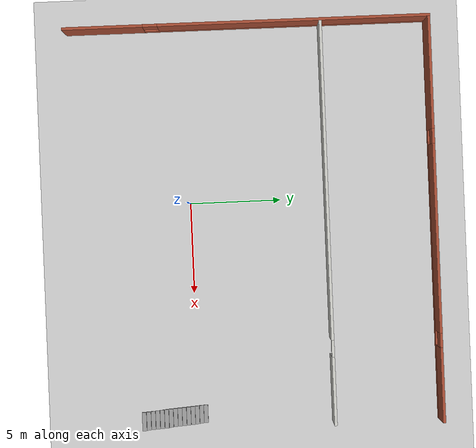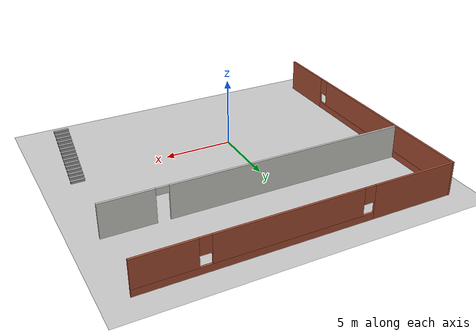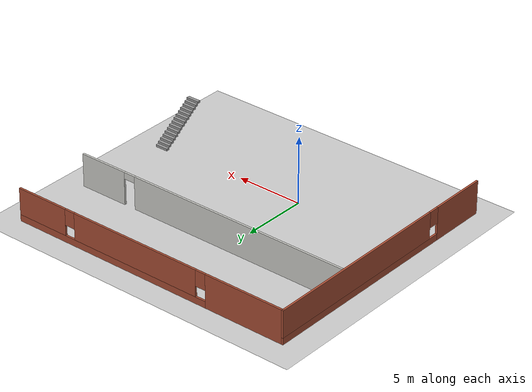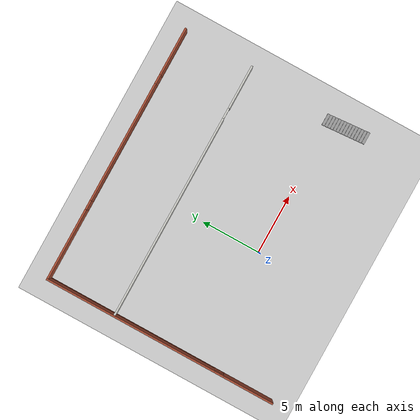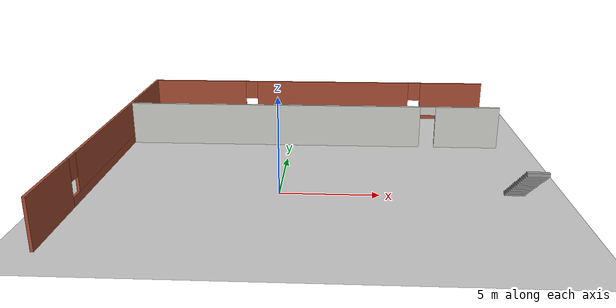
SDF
<sdf version="1.6">
 <world name="default">
  <model name="ground_plane">
   <static>1</static>
   <link name="link">
    <collision name="collision">
     <geometry><plane><normal>0 0 1</normal><size>100 100</size></plane></geometry>
     <surface>
      <contact><collide_bitmask>65535</collide_bitmask></contact>
      <friction><ode><mu>100</mu><mu2>50</mu2></ode></friction>
     </surface>
    </collision>
    <visual name="visual">
     <cast_shadows>0</cast_shadows>
     <geometry><plane><normal>0 0 1</normal><size>100 100</size></plane></geometry>
     <material>
      <script><uri>file://media/materials/scripts/gazebo.material</uri><name>Gazebo/Grey</name></script>
     </material>
    </visual>
   </link>
  </model>
  <model name="Building">
   <link name="Stairs_0">
    <visual name="Stairs_0_Visual_0">
     <pose>10.3988 -0.214929 0.083333 0 -0 0</pose>
     <geometry><box><size>1 0.233333 0.166667</size></box></geometry>
     <material>
      <script><uri>file://media/materials/scripts/gazebo.material</uri><name>Gazebo/Grey</name></script>
      <ambient>1 1 1 1</ambient>
      <shader type="pixel"/>
      <diffuse>0.7 0.7 0.7 1</diffuse>
      <specular>0.01 0.01 0.01 1</specular>
      <emissive>0 0 0 1</emissive>
     </material>
     <meta><layer>0</layer></meta>
    </visual>
    <visual name="Stairs_0_Visual_1">
     <pose>10.3988 -0.448263 0.25 0 -0 0</pose>
     <geometry><box><size>1 0.233333 0.166667</size></box></geometry>
     <material>
      <script><uri>file://media/materials/scripts/gazebo.material</uri><name>Gazebo/Grey</name></script>
      <ambient>1 1 1 1</ambient>
      <shader type="pixel"/>
      <diffuse>0.7 0.7 0.7 1</diffuse>
      <specular>0.01 0.01 0.01 1</specular>
      <emissive>0 0 0 1</emissive>
     </material>
     <meta><layer>0</layer></meta>
    </visual>
    <visual name="Stairs_0_Visual_2">
     <pose>10.3988 -0.681596 0.416667 0 -0 0</pose>
     <geometry><box><size>1 0.233333 0.166667</size></box></geometry>
     <material>
      <script><uri>file://media/materials/scripts/gazebo.material</uri><name>Gazebo/Grey</name></script>
      <ambient>1 1 1 1</ambient>
      <shader type="pixel"/>
      <diffuse>0.7 0.7 0.7 1</diffuse>
      <specular>0.01 0.01 0.01 1</specular>
      <emissive>0 0 0 1</emissive>
     </material>
     <meta><layer>0</layer></meta>
    </visual>
    <visual name="Stairs_0_Visual_3">
     <pose>10.3988 -0.914929 0.583333 0 -0 0</pose>
     <geometry><box><size>1 0.233333 0.166667</size></box></geometry>
     <material>
      <script><uri>file://media/materials/scripts/gazebo.material</uri><name>Gazebo/Grey</name></script>
      <ambient>1 1 1 1</ambient>
      <shader type="pixel"/>
      <diffuse>0.7 0.7 0.7 1</diffuse>
      <specular>0.01 0.01 0.01 1</specular>
      <emissive>0 0 0 1</emissive>
     </material>
     <meta><layer>0</layer></meta>
    </visual>
    <visual name="Stairs_0_Visual_4">
     <pose>10.3988 -1.14826 0.75 0 -0 0</pose>
     <geometry><box><size>1 0.233333 0.166667</size></box></geometry>
     <material>
      <script><uri>file://media/materials/scripts/gazebo.material</uri><name>Gazebo/Grey</name></script>
      <ambient>1 1 1 1</ambient>
      <shader type="pixel"/>
      <diffuse>0.7 0.7 0.7 1</diffuse>
      <specular>0.01 0.01 0.01 1</specular>
      <emissive>0 0 0 1</emissive>
     </material>
     <meta><layer>0</layer></meta>
    </visual>
    <visual name="Stairs_0_Visual_5">
     <pose>10.3988 -1.3816 0.916667 0 -0 0</pose>
     <geometry><box><size>1 0.233333 0.166667</size></box></geometry>
     <material>
      <script><uri>file://media/materials/scripts/gazebo.material</uri><name>Gazebo/Grey</name></script>
      <ambient>1 1 1 1</ambient>
      <shader type="pixel"/>
      <diffuse>0.7 0.7 0.7 1</diffuse>
      <specular>0.01 0.01 0.01 1</specular>
      <emissive>0 0 0 1</emissive>
     </material>
     <meta><layer>0</layer></meta>
    </visual>
    <visual name="Stairs_0_Visual_6">
     <pose>10.3988 -1.61493 1.08333 0 -0 0</pose>
     <geometry><box><size>1 0.233333 0.166667</size></box></geometry>
     <material>
      <script><uri>file://media/materials/scripts/gazebo.material</uri><name>Gazebo/Grey</name></script>
      <ambient>1 1 1 1</ambient>
      <shader type="pixel"/>
      <diffuse>0.7 0.7 0.7 1</diffuse>
      <specular>0.01 0.01 0.01 1</specular>
      <emissive>0 0 0 1</emissive>
     </material>
     <meta><layer>0</layer></meta>
    </visual>
    <visual name="Stairs_0_Visual_7">
     <pose>10.3988 -1.84826 1.25 0 -0 0</pose>
     <geometry><box><size>1 0.233333 0.166667</size></box></geometry>
     <material>
      <script><uri>file://media/materials/scripts/gazebo.material</uri><name>Gazebo/Grey</name></script>
      <ambient>1 1 1 1</ambient>
      <shader type="pixel"/>
      <diffuse>0.7 0.7 0.7 1</diffuse>
      <specular>0.01 0.01 0.01 1</specular>
      <emissive>0 0 0 1</emissive>
     </material>
     <meta><layer>0</layer></meta>
    </visual>
    <visual name="Stairs_0_Visual_8">
     <pose>10.3988 -2.0816 1.41667 0 -0 0</pose>
     <geometry><box><size>1 0.233333 0.166667</size></box></geometry>
     <material>
      <script><uri>file://media/materials/scripts/gazebo.material</uri><name>Gazebo/Grey</name></script>
      <ambient>1 1 1 1</ambient>
      <shader type="pixel"/>
      <diffuse>0.7 0.7 0.7 1</diffuse>
      <specular>0.01 0.01 0.01 1</specular>
      <emissive>0 0 0 1</emissive>
     </material>
     <meta><layer>0</layer></meta>
    </visual>
    <visual name="Stairs_0_Visual_9">
     <pose>10.3988 -2.31493 1.58333 0 -0 0</pose>
     <geometry><box><size>1 0.233333 0.166667</size></box></geometry>
     <material>
      <script><uri>file://media/materials/scripts/gazebo.material</uri><name>Gazebo/Grey</name></script>
      <ambient>1 1 1 1</ambient>
      <shader type="pixel"/>
      <diffuse>0.7 0.7 0.7 1</diffuse>
      <specular>0.01 0.01 0.01 1</specular>
      <emissive>0 0 0 1</emissive>
     </material>
     <meta><layer>0</layer></meta>
    </visual>
    <visual name="Stairs_0_Visual_10">
     <pose>10.3988 -2.54826 1.75 0 -0 0</pose>
     <geometry><box><size>1 0.233333 0.166667</size></box></geometry>
     <material>
      <script><uri>file://media/materials/scripts/gazebo.material</uri><name>Gazebo/Grey</name></script>
      <ambient>1 1 1 1</ambient>
      <shader type="pixel"/>
      <diffuse>0.7 0.7 0.7 1</diffuse>
      <specular>0.01 0.01 0.01 1</specular>
      <emissive>0 0 0 1</emissive>
     </material>
     <meta><layer>0</layer></meta>
    </visual>
    <visual name="Stairs_0_Visual_11">
     <pose>10.3988 -2.7816 1.91667 0 -0 0</pose>
     <geometry><box><size>1 0.233333 0.166667</size></box></geometry>
     <material>
      <script><uri>file://media/materials/scripts/gazebo.material</uri><name>Gazebo/Grey</name></script>
      <ambient>1 1 1 1</ambient>
      <shader type="pixel"/>
      <diffuse>0.7 0.7 0.7 1</diffuse>
      <specular>0.01 0.01 0.01 1</specular>
      <emissive>0 0 0 1</emissive>
     </material>
     <meta><layer>0</layer></meta>
    </visual>
    <visual name="Stairs_0_Visual_12">
     <pose>10.3988 -3.01493 2.08333 0 -0 0</pose>
     <geometry><box><size>1 0.233333 0.166667</size></box></geometry>
     <material>
      <script><uri>file://media/materials/scripts/gazebo.material</uri><name>Gazebo/Grey</name></script>
      <ambient>1 1 1 1</ambient>
      <shader type="pixel"/>
      <diffuse>0.7 0.7 0.7 1</diffuse>
      <specular>0.01 0.01 0.01 1</specular>
      <emissive>0 0 0 1</emissive>
     </material>
     <meta><layer>0</layer></meta>
    </visual>
    <visual name="Stairs_0_Visual_13">
     <pose>10.3988 -3.24826 2.25 0 -0 0</pose>
     <geometry><box><size>1 0.233333 0.166667</size></box></geometry>
     <material>
      <script><uri>file://media/materials/scripts/gazebo.material</uri><name>Gazebo/Grey</name></script>
      <ambient>1 1 1 1</ambient>
      <shader type="pixel"/>
      <diffuse>0.7 0.7 0.7 1</diffuse>
      <specular>0.01 0.01 0.01 1</specular>
      <emissive>0 0 0 1</emissive>
     </material>
     <meta><layer>0</layer></meta>
    </visual>
    <visual name="Stairs_0_Visual_14">
     <pose>10.3988 -3.4816 2.41667 0 -0 0</pose>
     <geometry><box><size>1 0.233333 0.166667</size></box></geometry>
     <material>
      <script><uri>file://media/materials/scripts/gazebo.material</uri><name>Gazebo/Grey</name></script>
      <ambient>1 1 1 1</ambient>
      <shader type="pixel"/>
      <diffuse>0.7 0.7 0.7 1</diffuse>
      <specular>0.01 0.01 0.01 1</specular>
      <emissive>0 0 0 1</emissive>
     </material>
     <meta><layer>0</layer></meta>
    </visual>
    <collision name="Stairs_0_Collision_0">
     <pose>10.3988 -0.214929 0.083333 0 -0 0</pose>
     <geometry><box><size>1 0.233333 0.166667</size></box></geometry>
     <surface>
      <friction>
       <ode><mu>1</mu><mu2>1</mu2><fdir1>0 0 0</fdir1><slip1>0</slip1><slip2>0</slip2></ode>
       <torsional>
        <coefficient>1</coefficient>
        <patch_radius>0</patch_radius>
        <surface_radius>0</surface_radius>
        <use_patch_radius>1</use_patch_radius>
        <ode><slip>0</slip></ode>
       </torsional>
      </friction>
      <bounce><restitution_coefficient>0</restitution_coefficient><threshold>1e+06</threshold></bounce>
      <contact>
       <collide_without_contact>0</collide_without_contact>
       <collide_without_contact_bitmask>1</collide_without_contact_bitmask>
       <collide_bitmask>1</collide_bitmask>
       <ode>
        <soft_cfm>0</soft_cfm>
        <soft_erp>0.2</soft_erp>
        <kp>1e+13</kp>
        <kd>1</kd>
        <max_vel>0.01</max_vel>
        <min_depth>0</min_depth>
       </ode>
       <bullet>
        <split_impulse>1</split_impulse>
        <split_impulse_penetration_threshold>-0.01</split_impulse_penetration_threshold>
        <soft_cfm>0</soft_cfm>
        <soft_erp>0.2</soft_erp>
        <kp>1e+13</kp>
        <kd>1</kd>
       </bullet>
      </contact>
     </surface>
    </collision>
    <collision name="Stairs_0_Collision_1">
     <pose>10.3988 -0.448263 0.25 0 -0 0</pose>
     <geometry><box><size>1 0.233333 0.166667</size></box></geometry>
     <surface>
      <friction>
       <ode><mu>1</mu><mu2>1</mu2><fdir1>0 0 0</fdir1><slip1>0</slip1><slip2>0</slip2></ode>
       <torsional>
        <coefficient>1</coefficient>
        <patch_radius>0</patch_radius>
        <surface_radius>0</surface_radius>
        <use_patch_radius>1</use_patch_radius>
        <ode><slip>0</slip></ode>
       </torsional>
      </friction>
      <bounce><restitution_coefficient>0</restitution_coefficient><threshold>1e+06</threshold></bounce>
      <contact>
       <collide_without_contact>0</collide_without_contact>
       <collide_without_contact_bitmask>1</collide_without_contact_bitmask>
       <collide_bitmask>1</collide_bitmask>
       <ode>
        <soft_cfm>0</soft_cfm>
        <soft_erp>0.2</soft_erp>
        <kp>1e+13</kp>
        <kd>1</kd>
        <max_vel>0.01</max_vel>
        <min_depth>0</min_depth>
       </ode>
       <bullet>
        <split_impulse>1</split_impulse>
        <split_impulse_penetration_threshold>-0.01</split_impulse_penetration_threshold>
        <soft_cfm>0</soft_cfm>
        <soft_erp>0.2</soft_erp>
        <kp>1e+13</kp>
        <kd>1</kd>
       </bullet>
      </contact>
     </surface>
    </collision>
    <collision name="Stairs_0_Collision_2">
     <pose>10.3988 -0.681596 0.416667 0 -0 0</pose>
     <geometry><box><size>1 0.233333 0.166667</size></box></geometry>
     <surface>
      <friction>
       <ode><mu>1</mu><mu2>1</mu2><fdir1>0 0 0</fdir1><slip1>0</slip1><slip2>0</slip2></ode>
       <torsional>
        <coefficient>1</coefficient>
        <patch_radius>0</patch_radius>
        <surface_radius>0</surface_radius>
        <use_patch_radius>1</use_patch_radius>
        <ode><slip>0</slip></ode>
       </torsional>
      </friction>
      <bounce><restitution_coefficient>0</restitution_coefficient><threshold>1e+06</threshold></bounce>
      <contact>
       <collide_without_contact>0</collide_without_contact>
       <collide_without_contact_bitmask>1</collide_without_contact_bitmask>
       <collide_bitmask>1</collide_bitmask>
       <ode>
        <soft_cfm>0</soft_cfm>
        <soft_erp>0.2</soft_erp>
        <kp>1e+13</kp>
        <kd>1</kd>
        <max_vel>0.01</max_vel>
        <min_depth>0</min_depth>
       </ode>
       <bullet>
        <split_impulse>1</split_impulse>
        <split_impulse_penetration_threshold>-0.01</split_impulse_penetration_threshold>
        <soft_cfm>0</soft_cfm>
        <soft_erp>0.2</soft_erp>
        <kp>1e+13</kp>
        <kd>1</kd>
       </bullet>
      </contact>
     </surface>
    </collision>
    <collision name="Stairs_0_Collision_8">
     <pose>10.3988 -2.0816 1.41667 0 -0 0</pose>
     <geometry><box><size>1 0.233333 0.166667</size></box></geometry>
     <surface>
      <friction>
       <ode><mu>1</mu><mu2>1</mu2><fdir1>0 0 0</fdir1><slip1>0</slip1><slip2>0</slip2></ode>
       <torsional>
        <coefficient>1</coefficient>
        <patch_radius>0</patch_radius>
        <surface_radius>0</surface_radius>
        <use_patch_radius>1</use_patch_radius>
        <ode><slip>0</slip></ode>
       </torsional>
      </friction>
      <bounce><restitution_coefficient>0</restitution_coefficient><threshold>1e+06</threshold></bounce>
      <contact>
       <collide_without_contact>0</collide_without_contact>
       <collide_without_contact_bitmask>1</collide_without_contact_bitmask>
       <collide_bitmask>1</collide_bitmask>
       <ode>
        <soft_cfm>0</soft_cfm>
        <soft_erp>0.2</soft_erp>
        <kp>1e+13</kp>
        <kd>1</kd>
        <max_vel>0.01</max_vel>
        <min_depth>0</min_depth>
       </ode>
       <bullet>
        <split_impulse>1</split_impulse>
        <split_impulse_penetration_threshold>-0.01</split_impulse_penetration_threshold>
        <soft_cfm>0</soft_cfm>
        <soft_erp>0.2</soft_erp>
        <kp>1e+13</kp>
        <kd>1</kd>
       </bullet>
      </contact>
     </surface>
    </collision>
    <collision name="Stairs_0_Collision_3">
     <pose>10.3988 -0.914929 0.583333 0 -0 0</pose>
     <geometry><box><size>1 0.233333 0.166667</size></box></geometry>
     <surface>
      <friction>
       <ode><mu>1</mu><mu2>1</mu2><fdir1>0 0 0</fdir1><slip1>0</slip1><slip2>0</slip2></ode>
       <torsional>
        <coefficient>1</coefficient>
        <patch_radius>0</patch_radius>
        <surface_radius>0</surface_radius>
        <use_patch_radius>1</use_patch_radius>
        <ode><slip>0</slip></ode>
       </torsional>
      </friction>
      <bounce><restitution_coefficient>0</restitution_coefficient><threshold>1e+06</threshold></bounce>
      <contact>
       <collide_without_contact>0</collide_without_contact>
       <collide_without_contact_bitmask>1</collide_without_contact_bitmask>
       <collide_bitmask>1</collide_bitmask>
       <ode>
        <soft_cfm>0</soft_cfm>
        <soft_erp>0.2</soft_erp>
        <kp>1e+13</kp>
        <kd>1</kd>
        <max_vel>0.01</max_vel>
        <min_depth>0</min_depth>
       </ode>
       <bullet>
        <split_impulse>1</split_impulse>
        <split_impulse_penetration_threshold>-0.01</split_impulse_penetration_threshold>
        <soft_cfm>0</soft_cfm>
        <soft_erp>0.2</soft_erp>
        <kp>1e+13</kp>
        <kd>1</kd>
       </bullet>
      </contact>
     </surface>
    </collision>
    <collision name="Stairs_0_Collision_6">
     <pose>10.3988 -1.61493 1.08333 0 -0 0</pose>
     <geometry><box><size>1 0.233333 0.166667</size></box></geometry>
     <surface>
      <friction>
       <ode><mu>1</mu><mu2>1</mu2><fdir1>0 0 0</fdir1><slip1>0</slip1><slip2>0</slip2></ode>
       <torsional>
        <coefficient>1</coefficient>
        <patch_radius>0</patch_radius>
        <surface_radius>0</surface_radius>
        <use_patch_radius>1</use_patch_radius>
        <ode><slip>0</slip></ode>
       </torsional>
      </friction>
      <bounce><restitution_coefficient>0</restitution_coefficient><threshold>1e+06</threshold></bounce>
      <contact>
       <collide_without_contact>0</collide_without_contact>
       <collide_without_contact_bitmask>1</collide_without_contact_bitmask>
       <collide_bitmask>1</collide_bitmask>
       <ode>
        <soft_cfm>0</soft_cfm>
        <soft_erp>0.2</soft_erp>
        <kp>1e+13</kp>
        <kd>1</kd>
        <max_vel>0.01</max_vel>
        <min_depth>0</min_depth>
       </ode>
       <bullet>
        <split_impulse>1</split_impulse>
        <split_impulse_penetration_threshold>-0.01</split_impulse_penetration_threshold>
        <soft_cfm>0</soft_cfm>
        <soft_erp>0.2</soft_erp>
        <kp>1e+13</kp>
        <kd>1</kd>
       </bullet>
      </contact>
     </surface>
    </collision>
    <collision name="Stairs_0_Collision_4">
     <pose>10.3988 -1.14826 0.75 0 -0 0</pose>
     <geometry><box><size>1 0.233333 0.166667</size></box></geometry>
     <surface>
      <friction>
       <ode><mu>1</mu><mu2>1</mu2><fdir1>0 0 0</fdir1><slip1>0</slip1><slip2>0</slip2></ode>
       <torsional>
        <coefficient>1</coefficient>
        <patch_radius>0</patch_radius>
        <surface_radius>0</surface_radius>
        <use_patch_radius>1</use_patch_radius>
        <ode><slip>0</slip></ode>
       </torsional>
      </friction>
      <bounce><restitution_coefficient>0</restitution_coefficient><threshold>1e+06</threshold></bounce>
      <contact>
       <collide_without_contact>0</collide_without_contact>
       <collide_without_contact_bitmask>1</collide_without_contact_bitmask>
       <collide_bitmask>1</collide_bitmask>
       <ode>
        <soft_cfm>0</soft_cfm>
        <soft_erp>0.2</soft_erp>
        <kp>1e+13</kp>
        <kd>1</kd>
        <max_vel>0.01</max_vel>
        <min_depth>0</min_depth>
       </ode>
       <bullet>
        <split_impulse>1</split_impulse>
        <split_impulse_penetration_threshold>-0.01</split_impulse_penetration_threshold>
        <soft_cfm>0</soft_cfm>
        <soft_erp>0.2</soft_erp>
        <kp>1e+13</kp>
        <kd>1</kd>
       </bullet>
      </contact>
     </surface>
    </collision>
    <collision name="Stairs_0_Collision_5">
     <pose>10.3988 -1.3816 0.916667 0 -0 0</pose>
     <geometry><box><size>1 0.233333 0.166667</size></box></geometry>
     <surface>
      <friction>
       <ode><mu>1</mu><mu2>1</mu2><fdir1>0 0 0</fdir1><slip1>0</slip1><slip2>0</slip2></ode>
       <torsional>
        <coefficient>1</coefficient>
        <patch_radius>0</patch_radius>
        <surface_radius>0</surface_radius>
        <use_patch_radius>1</use_patch_radius>
        <ode><slip>0</slip></ode>
       </torsional>
      </friction>
      <bounce><restitution_coefficient>0</restitution_coefficient><threshold>1e+06</threshold></bounce>
      <contact>
       <collide_without_contact>0</collide_without_contact>
       <collide_without_contact_bitmask>1</collide_without_contact_bitmask>
       <collide_bitmask>1</collide_bitmask>
       <ode>
        <soft_cfm>0</soft_cfm>
        <soft_erp>0.2</soft_erp>
        <kp>1e+13</kp>
        <kd>1</kd>
        <max_vel>0.01</max_vel>
        <min_depth>0</min_depth>
       </ode>
       <bullet>
        <split_impulse>1</split_impulse>
        <split_impulse_penetration_threshold>-0.01</split_impulse_penetration_threshold>
        <soft_cfm>0</soft_cfm>
        <soft_erp>0.2</soft_erp>
        <kp>1e+13</kp>
        <kd>1</kd>
       </bullet>
      </contact>
     </surface>
    </collision>
    <collision name="Stairs_0_Collision_7">
     <pose>10.3988 -1.84826 1.25 0 -0 0</pose>
     <geometry><box><size>1 0.233333 0.166667</size></box></geometry>
     <surface>
      <friction>
       <ode><mu>1</mu><mu2>1</mu2><fdir1>0 0 0</fdir1><slip1>0</slip1><slip2>0</slip2></ode>
       <torsional>
        <coefficient>1</coefficient>
        <patch_radius>0</patch_radius>
        <surface_radius>0</surface_radius>
        <use_patch_radius>1</use_patch_radius>
        <ode><slip>0</slip></ode>
       </torsional>
      </friction>
      <bounce><restitution_coefficient>0</restitution_coefficient><threshold>1e+06</threshold></bounce>
      <contact>
       <collide_without_contact>0</collide_without_contact>
       <collide_without_contact_bitmask>1</collide_without_contact_bitmask>
       <collide_bitmask>1</collide_bitmask>
       <ode>
        <soft_cfm>0</soft_cfm>
        <soft_erp>0.2</soft_erp>
        <kp>1e+13</kp>
        <kd>1</kd>
        <max_vel>0.01</max_vel>
        <min_depth>0</min_depth>
       </ode>
       <bullet>
        <split_impulse>1</split_impulse>
        <split_impulse_penetration_threshold>-0.01</split_impulse_penetration_threshold>
        <soft_cfm>0</soft_cfm>
        <soft_erp>0.2</soft_erp>
        <kp>1e+13</kp>
        <kd>1</kd>
       </bullet>
      </contact>
     </surface>
    </collision>
    <collision name="Stairs_0_Collision_9">
     <pose>10.3988 -2.31493 1.58333 0 -0 0</pose>
     <geometry><box><size>1 0.233333 0.166667</size></box></geometry>
     <surface>
      <friction>
       <ode><mu>1</mu><mu2>1</mu2><fdir1>0 0 0</fdir1><slip1>0</slip1><slip2>0</slip2></ode>
       <torsional>
        <coefficient>1</coefficient>
        <patch_radius>0</patch_radius>
        <surface_radius>0</surface_radius>
        <use_patch_radius>1</use_patch_radius>
        <ode><slip>0</slip></ode>
       </torsional>
      </friction>
      <bounce><restitution_coefficient>0</restitution_coefficient><threshold>1e+06</threshold></bounce>
      <contact>
       <collide_without_contact>0</collide_without_contact>
       <collide_without_contact_bitmask>1</collide_without_contact_bitmask>
       <collide_bitmask>1</collide_bitmask>
       <ode>
        <soft_cfm>0</soft_cfm>
        <soft_erp>0.2</soft_erp>
        <kp>1e+13</kp>
        <kd>1</kd>
        <max_vel>0.01</max_vel>
        <min_depth>0</min_depth>
       </ode>
       <bullet>
        <split_impulse>1</split_impulse>
        <split_impulse_penetration_threshold>-0.01</split_impulse_penetration_threshold>
        <soft_cfm>0</soft_cfm>
        <soft_erp>0.2</soft_erp>
        <kp>1e+13</kp>
        <kd>1</kd>
       </bullet>
      </contact>
     </surface>
    </collision>
    <collision name="Stairs_0_Collision_10">
     <pose>10.3988 -2.54826 1.75 0 -0 0</pose>
     <geometry><box><size>1 0.233333 0.166667</size></box></geometry>
     <surface>
      <friction>
       <ode><mu>1</mu><mu2>1</mu2><fdir1>0 0 0</fdir1><slip1>0</slip1><slip2>0</slip2></ode>
       <torsional>
        <coefficient>1</coefficient>
        <patch_radius>0</patch_radius>
        <surface_radius>0</surface_radius>
        <use_patch_radius>1</use_patch_radius>
        <ode><slip>0</slip></ode>
       </torsional>
      </friction>
      <bounce><restitution_coefficient>0</restitution_coefficient><threshold>1e+06</threshold></bounce>
      <contact>
       <collide_without_contact>0</collide_without_contact>
       <collide_without_contact_bitmask>1</collide_without_contact_bitmask>
       <collide_bitmask>1</collide_bitmask>
       <ode>
        <soft_cfm>0</soft_cfm>
        <soft_erp>0.2</soft_erp>
        <kp>1e+13</kp>
        <kd>1</kd>
        <max_vel>0.01</max_vel>
        <min_depth>0</min_depth>
       </ode>
       <bullet>
        <split_impulse>1</split_impulse>
        <split_impulse_penetration_threshold>-0.01</split_impulse_penetration_threshold>
        <soft_cfm>0</soft_cfm>
        <soft_erp>0.2</soft_erp>
        <kp>1e+13</kp>
        <kd>1</kd>
       </bullet>
      </contact>
     </surface>
    </collision>
    <collision name="Stairs_0_Collision_14">
     <pose>10.3988 -3.4816 2.41667 0 -0 0</pose>
     <geometry><box><size>1 0.233333 0.166667</size></box></geometry>
     <surface>
      <friction>
       <ode><mu>1</mu><mu2>1</mu2><fdir1>0 0 0</fdir1><slip1>0</slip1><slip2>0</slip2></ode>
       <torsional>
        <coefficient>1</coefficient>
        <patch_radius>0</patch_radius>
        <surface_radius>0</surface_radius>
        <use_patch_radius>1</use_patch_radius>
        <ode><slip>0</slip></ode>
       </torsional>
      </friction>
      <bounce><restitution_coefficient>0</restitution_coefficient><threshold>1e+06</threshold></bounce>
      <contact>
       <collide_without_contact>0</collide_without_contact>
       <collide_without_contact_bitmask>1</collide_without_contact_bitmask>
       <collide_bitmask>1</collide_bitmask>
       <ode>
        <soft_cfm>0</soft_cfm>
        <soft_erp>0.2</soft_erp>
        <kp>1e+13</kp>
        <kd>1</kd>
        <max_vel>0.01</max_vel>
        <min_depth>0</min_depth>
       </ode>
       <bullet>
        <split_impulse>1</split_impulse>
        <split_impulse_penetration_threshold>-0.01</split_impulse_penetration_threshold>
        <soft_cfm>0</soft_cfm>
        <soft_erp>0.2</soft_erp>
        <kp>1e+13</kp>
        <kd>1</kd>
       </bullet>
      </contact>
     </surface>
    </collision>
    <collision name="Stairs_0_Collision_11">
     <pose>10.3988 -2.7816 1.91667 0 -0 0</pose>
     <geometry><box><size>1 0.233333 0.166667</size></box></geometry>
     <surface>
      <friction>
       <ode><mu>1</mu><mu2>1</mu2><fdir1>0 0 0</fdir1><slip1>0</slip1><slip2>0</slip2></ode>
       <torsional>
        <coefficient>1</coefficient>
        <patch_radius>0</patch_radius>
        <surface_radius>0</surface_radius>
        <use_patch_radius>1</use_patch_radius>
        <ode><slip>0</slip></ode>
       </torsional>
      </friction>
      <bounce><restitution_coefficient>0</restitution_coefficient><threshold>1e+06</threshold></bounce>
      <contact>
       <collide_without_contact>0</collide_without_contact>
       <collide_without_contact_bitmask>1</collide_without_contact_bitmask>
       <collide_bitmask>1</collide_bitmask>
       <ode>
        <soft_cfm>0</soft_cfm>
        <soft_erp>0.2</soft_erp>
        <kp>1e+13</kp>
        <kd>1</kd>
        <max_vel>0.01</max_vel>
        <min_depth>0</min_depth>
       </ode>
       <bullet>
        <split_impulse>1</split_impulse>
        <split_impulse_penetration_threshold>-0.01</split_impulse_penetration_threshold>
        <soft_cfm>0</soft_cfm>
        <soft_erp>0.2</soft_erp>
        <kp>1e+13</kp>
        <kd>1</kd>
       </bullet>
      </contact>
     </surface>
    </collision>
    <collision name="Stairs_0_Collision_12">
     <pose>10.3988 -3.01493 2.08333 0 -0 0</pose>
     <geometry><box><size>1 0.233333 0.166667</size></box></geometry>
     <surface>
      <friction>
       <ode><mu>1</mu><mu2>1</mu2><fdir1>0 0 0</fdir1><slip1>0</slip1><slip2>0</slip2></ode>
       <torsional>
        <coefficient>1</coefficient>
        <patch_radius>0</patch_radius>
        <surface_radius>0</surface_radius>
        <use_patch_radius>1</use_patch_radius>
        <ode><slip>0</slip></ode>
       </torsional>
      </friction>
      <bounce><restitution_coefficient>0</restitution_coefficient><threshold>1e+06</threshold></bounce>
      <contact>
       <collide_without_contact>0</collide_without_contact>
       <collide_without_contact_bitmask>1</collide_without_contact_bitmask>
       <collide_bitmask>1</collide_bitmask>
       <ode>
        <soft_cfm>0</soft_cfm>
        <soft_erp>0.2</soft_erp>
        <kp>1e+13</kp>
        <kd>1</kd>
        <max_vel>0.01</max_vel>
        <min_depth>0</min_depth>
       </ode>
       <bullet>
        <split_impulse>1</split_impulse>
        <split_impulse_penetration_threshold>-0.01</split_impulse_penetration_threshold>
        <soft_cfm>0</soft_cfm>
        <soft_erp>0.2</soft_erp>
        <kp>1e+13</kp>
        <kd>1</kd>
       </bullet>
      </contact>
     </surface>
    </collision>
    <collision name="Stairs_0_Collision_13">
     <pose>10.3988 -3.24826 2.25 0 -0 0</pose>
     <geometry><box><size>1 0.233333 0.166667</size></box></geometry>
     <surface>
      <friction>
       <ode><mu>1</mu><mu2>1</mu2><fdir1>0 0 0</fdir1><slip1>0</slip1><slip2>0</slip2></ode>
       <torsional>
        <coefficient>1</coefficient>
        <patch_radius>0</patch_radius>
        <surface_radius>0</surface_radius>
        <use_patch_radius>1</use_patch_radius>
        <ode><slip>0</slip></ode>
       </torsional>
      </friction>
      <bounce><restitution_coefficient>0</restitution_coefficient><threshold>1e+06</threshold></bounce>
      <contact>
       <collide_without_contact>0</collide_without_contact>
       <collide_without_contact_bitmask>1</collide_without_contact_bitmask>
       <collide_bitmask>1</collide_bitmask>
       <ode>
        <soft_cfm>0</soft_cfm>
        <soft_erp>0.2</soft_erp>
        <kp>1e+13</kp>
        <kd>1</kd>
        <max_vel>0.01</max_vel>
        <min_depth>0</min_depth>
       </ode>
       <bullet>
        <split_impulse>1</split_impulse>
        <split_impulse_penetration_threshold>-0.01</split_impulse_penetration_threshold>
        <soft_cfm>0</soft_cfm>
        <soft_erp>0.2</soft_erp>
        <kp>1e+13</kp>
        <kd>1</kd>
       </bullet>
      </contact>
     </surface>
    </collision>
   </link>
   <link name="Wall_0">
    <pose>-11.05 2.85254 0 0 -0 1.5708</pose>
    <visual name="Wall_0_Visual_0">
     <pose>-7.80775 0 1.25 0 -0 0</pose>
     <geometry><box><size>4.3845 0.15 2.5</size></box></geometry>
     <material>
      <script><uri>file://media/materials/scripts/gazebo.material</uri><name>Gazebo/Bricks</name></script>
      <ambient>1 1 1 1</ambient>
      <shader type="pixel"/>
      <diffuse>1 1 1 1</diffuse>
      <specular>0.2 0.2 0.2 1</specular>
      <emissive>0 0 0 1</emissive>
     </material>
     <meta><layer>0</layer></meta>
    </visual>
    <visual name="Wall_0_Visual_1">
     <pose>2.19225 0 0.25 0 -0 0</pose>
     <geometry><box><size>15.6155 0.15 0.5</size></box></geometry>
     <material>
      <script><uri>file://media/materials/scripts/gazebo.material</uri><name>Gazebo/Bricks</name></script>
      <ambient>1 1 1 1</ambient>
      <shader type="pixel"/>
      <diffuse>1 1 1 1</diffuse>
      <specular>0.2 0.2 0.2 1</specular>
      <emissive>0 0 0 1</emissive>
     </material>
     <meta><layer>0</layer></meta>
    </visual>
    <visual name="Wall_0_Visual_2">
     <pose>2.59225 0 1.5 0 -0 0</pose>
     <geometry><box><size>14.8155 0.15 2</size></box></geometry>
     <material>
      <script><uri>file://media/materials/scripts/gazebo.material</uri><name>Gazebo/Bricks</name></script>
      <ambient>1 1 1 1</ambient>
      <shader type="pixel"/>
      <diffuse>1 1 1 1</diffuse>
      <specular>0.2 0.2 0.2 1</specular>
      <emissive>0 0 0 1</emissive>
     </material>
     <meta><layer>0</layer></meta>
    </visual>
    <visual name="Wall_0_Visual_3">
     <pose>-5.2155 0 1.9 0 -0 0</pose>
     <geometry><box><size>0.8 0.15 1.2</size></box></geometry>
     <material>
      <script><uri>file://media/materials/scripts/gazebo.material</uri><name>Gazebo/Bricks</name></script>
      <ambient>1 1 1 1</ambient>
      <shader type="pixel"/>
      <diffuse>1 1 1 1</diffuse>
      <specular>0.2 0.2 0.2 1</specular>
      <emissive>0 0 0 1</emissive>
     </material>
     <meta><layer>0</layer></meta>
    </visual>
    <collision name="Wall_0_Collision_0">
     <pose>-7.80775 0 1.25 0 -0 0</pose>
     <geometry><box><size>4.3845 0.15 2.5</size></box></geometry>
     <surface>
      <friction>
       <ode><mu>1</mu><mu2>1</mu2><fdir1>0 0 0</fdir1><slip1>0</slip1><slip2>0</slip2></ode>
       <torsional>
        <coefficient>1</coefficient>
        <patch_radius>0</patch_radius>
        <surface_radius>0</surface_radius>
        <use_patch_radius>1</use_patch_radius>
        <ode><slip>0</slip></ode>
       </torsional>
      </friction>
      <bounce><restitution_coefficient>0</restitution_coefficient><threshold>1e+06</threshold></bounce>
      <contact>
       <collide_without_contact>0</collide_without_contact>
       <collide_without_contact_bitmask>1</collide_without_contact_bitmask>
       <collide_bitmask>1</collide_bitmask>
       <ode>
        <soft_cfm>0</soft_cfm>
        <soft_erp>0.2</soft_erp>
        <kp>1e+13</kp>
        <kd>1</kd>
        <max_vel>0.01</max_vel>
        <min_depth>0</min_depth>
       </ode>
       <bullet>
        <split_impulse>1</split_impulse>
        <split_impulse_penetration_threshold>-0.01</split_impulse_penetration_threshold>
        <soft_cfm>0</soft_cfm>
        <soft_erp>0.2</soft_erp>
        <kp>1e+13</kp>
        <kd>1</kd>
       </bullet>
      </contact>
     </surface>
    </collision>
    <collision name="Wall_0_Collision_1">
     <pose>2.19225 0 0.25 0 -0 0</pose>
     <geometry><box><size>15.6155 0.15 0.5</size></box></geometry>
     <surface>
      <friction>
       <ode><mu>1</mu><mu2>1</mu2><fdir1>0 0 0</fdir1><slip1>0</slip1><slip2>0</slip2></ode>
       <torsional>
        <coefficient>1</coefficient>
        <patch_radius>0</patch_radius>
        <surface_radius>0</surface_radius>
        <use_patch_radius>1</use_patch_radius>
        <ode><slip>0</slip></ode>
       </torsional>
      </friction>
      <bounce><restitution_coefficient>0</restitution_coefficient><threshold>1e+06</threshold></bounce>
      <contact>
       <collide_without_contact>0</collide_without_contact>
       <collide_without_contact_bitmask>1</collide_without_contact_bitmask>
       <collide_bitmask>1</collide_bitmask>
       <ode>
        <soft_cfm>0</soft_cfm>
        <soft_erp>0.2</soft_erp>
        <kp>1e+13</kp>
        <kd>1</kd>
        <max_vel>0.01</max_vel>
        <min_depth>0</min_depth>
       </ode>
       <bullet>
        <split_impulse>1</split_impulse>
        <split_impulse_penetration_threshold>-0.01</split_impulse_penetration_threshold>
        <soft_cfm>0</soft_cfm>
        <soft_erp>0.2</soft_erp>
        <kp>1e+13</kp>
        <kd>1</kd>
       </bullet>
      </contact>
     </surface>
    </collision>
    <collision name="Wall_0_Collision_2">
     <pose>2.59225 0 1.5 0 -0 0</pose>
     <geometry><box><size>14.8155 0.15 2</size></box></geometry>
     <surface>
      <friction>
       <ode><mu>1</mu><mu2>1</mu2><fdir1>0 0 0</fdir1><slip1>0</slip1><slip2>0</slip2></ode>
       <torsional>
        <coefficient>1</coefficient>
        <patch_radius>0</patch_radius>
        <surface_radius>0</surface_radius>
        <use_patch_radius>1</use_patch_radius>
        <ode><slip>0</slip></ode>
       </torsional>
      </friction>
      <bounce><restitution_coefficient>0</restitution_coefficient><threshold>1e+06</threshold></bounce>
      <contact>
       <collide_without_contact>0</collide_without_contact>
       <collide_without_contact_bitmask>1</collide_without_contact_bitmask>
       <collide_bitmask>1</collide_bitmask>
       <ode>
        <soft_cfm>0</soft_cfm>
        <soft_erp>0.2</soft_erp>
        <kp>1e+13</kp>
        <kd>1</kd>
        <max_vel>0.01</max_vel>
        <min_depth>0</min_depth>
       </ode>
       <bullet>
        <split_impulse>1</split_impulse>
        <split_impulse_penetration_threshold>-0.01</split_impulse_penetration_threshold>
        <soft_cfm>0</soft_cfm>
        <soft_erp>0.2</soft_erp>
        <kp>1e+13</kp>
        <kd>1</kd>
       </bullet>
      </contact>
     </surface>
    </collision>
    <collision name="Wall_0_Collision_3">
     <pose>-5.2155 0 1.9 0 -0 0</pose>
     <geometry><box><size>0.8 0.15 1.2</size></box></geometry>
     <surface>
      <friction>
       <ode><mu>1</mu><mu2>1</mu2><fdir1>0 0 0</fdir1><slip1>0</slip1><slip2>0</slip2></ode>
       <torsional>
        <coefficient>1</coefficient>
        <patch_radius>0</patch_radius>
        <surface_radius>0</surface_radius>
        <use_patch_radius>1</use_patch_radius>
        <ode><slip>0</slip></ode>
       </torsional>
      </friction>
      <bounce><restitution_coefficient>0</restitution_coefficient><threshold>1e+06</threshold></bounce>
      <contact>
       <collide_without_contact>0</collide_without_contact>
       <collide_without_contact_bitmask>1</collide_without_contact_bitmask>
       <collide_bitmask>1</collide_bitmask>
       <ode>
        <soft_cfm>0</soft_cfm>
        <soft_erp>0.2</soft_erp>
        <kp>1e+13</kp>
        <kd>1</kd>
        <max_vel>0.01</max_vel>
        <min_depth>0</min_depth>
       </ode>
       <bullet>
        <split_impulse>1</split_impulse>
        <split_impulse_penetration_threshold>-0.01</split_impulse_penetration_threshold>
        <soft_cfm>0</soft_cfm>
        <soft_erp>0.2</soft_erp>
        <kp>1e+13</kp>
        <kd>1</kd>
       </bullet>
      </contact>
     </surface>
    </collision>
   </link>
   <link name="Wall_21">
    <pose>0.035167 6.8887 0 0 -0 0</pose>
    <visual name="Wall_21_Visual_0">
     <pose>-2.31915 0 1.25 0 -0 0</pose>
     <geometry><box><size>17.3617 0.15 2.5</size></box></geometry>
     <material>
      <script><uri>file://media/materials/scripts/gazebo.material</uri><name>Gazebo/CeilingTiled</name></script>
      <ambient>0.996078 0.47451 0.0196078 1</ambient>
      <shader type="pixel"/>
      <diffuse>1 1 1 1</diffuse>
      <specular>0 0 0 1</specular>
      <emissive>0 0 0 1</emissive>
     </material>
     <meta><layer>0</layer></meta>
    </visual>
    <visual name="Wall_21_Visual_1">
     <pose>9.13085 0 1.25 0 -0 0</pose>
     <geometry><box><size>3.7383 0.15 2.5</size></box></geometry>
     <material>
      <script><uri>file://media/materials/scripts/gazebo.material</uri><name>Gazebo/CeilingTiled</name></script>
      <ambient>0.996078 0.47451 0.0196078 1</ambient>
      <shader type="pixel"/>
      <diffuse>1 1 1 1</diffuse>
      <specular>0 0 0 1</specular>
      <emissive>0 0 0 1</emissive>
     </material>
     <meta><layer>0</layer></meta>
    </visual>
    <visual name="Wall_21_Visual_2">
     <pose>6.8117 0 2.25 0 -0 0</pose>
     <geometry><box><size>0.9 0.15 0.5</size></box></geometry>
     <material>
      <script><uri>file://media/materials/scripts/gazebo.material</uri><name>Gazebo/CeilingTiled</name></script>
      <ambient>0.996078 0.47451 0.0196078 1</ambient>
      <shader type="pixel"/>
      <diffuse>1 1 1 1</diffuse>
      <specular>0 0 0 1</specular>
      <emissive>0 0 0 1</emissive>
     </material>
     <meta><layer>0</layer></meta>
    </visual>
    <collision name="Wall_21_Collision_0">
     <pose>-2.31915 0 1.25 0 -0 0</pose>
     <geometry><box><size>17.3617 0.15 2.5</size></box></geometry>
     <surface>
      <friction>
       <ode><mu>1</mu><mu2>1</mu2><fdir1>0 0 0</fdir1><slip1>0</slip1><slip2>0</slip2></ode>
       <torsional>
        <coefficient>1</coefficient>
        <patch_radius>0</patch_radius>
        <surface_radius>0</surface_radius>
        <use_patch_radius>1</use_patch_radius>
        <ode><slip>0</slip></ode>
       </torsional>
      </friction>
      <bounce><restitution_coefficient>0</restitution_coefficient><threshold>1e+06</threshold></bounce>
      <contact>
       <collide_without_contact>0</collide_without_contact>
       <collide_without_contact_bitmask>1</collide_without_contact_bitmask>
       <collide_bitmask>1</collide_bitmask>
       <ode>
        <soft_cfm>0</soft_cfm>
        <soft_erp>0.2</soft_erp>
        <kp>1e+13</kp>
        <kd>1</kd>
        <max_vel>0.01</max_vel>
        <min_depth>0</min_depth>
       </ode>
       <bullet>
        <split_impulse>1</split_impulse>
        <split_impulse_penetration_threshold>-0.01</split_impulse_penetration_threshold>
        <soft_cfm>0</soft_cfm>
        <soft_erp>0.2</soft_erp>
        <kp>1e+13</kp>
        <kd>1</kd>
       </bullet>
      </contact>
     </surface>
    </collision>
    <collision name="Wall_21_Collision_2">
     <pose>6.8117 0 2.25 0 -0 0</pose>
     <geometry><box><size>0.9 0.15 0.5</size></box></geometry>
     <surface>
      <friction>
       <ode><mu>1</mu><mu2>1</mu2><fdir1>0 0 0</fdir1><slip1>0</slip1><slip2>0</slip2></ode>
       <torsional>
        <coefficient>1</coefficient>
        <patch_radius>0</patch_radius>
        <surface_radius>0</surface_radius>
        <use_patch_radius>1</use_patch_radius>
        <ode><slip>0</slip></ode>
       </torsional>
      </friction>
      <bounce><restitution_coefficient>0</restitution_coefficient><threshold>1e+06</threshold></bounce>
      <contact>
       <collide_without_contact>0</collide_without_contact>
       <collide_without_contact_bitmask>1</collide_without_contact_bitmask>
       <collide_bitmask>1</collide_bitmask>
       <ode>
        <soft_cfm>0</soft_cfm>
        <soft_erp>0.2</soft_erp>
        <kp>1e+13</kp>
        <kd>1</kd>
        <max_vel>0.01</max_vel>
        <min_depth>0</min_depth>
       </ode>
       <bullet>
        <split_impulse>1</split_impulse>
        <split_impulse_penetration_threshold>-0.01</split_impulse_penetration_threshold>
        <soft_cfm>0</soft_cfm>
        <soft_erp>0.2</soft_erp>
        <kp>1e+13</kp>
        <kd>1</kd>
       </bullet>
      </contact>
     </surface>
    </collision>
    <collision name="Wall_21_Collision_1">
     <pose>9.13085 0 1.25 0 -0 0</pose>
     <geometry><box><size>3.7383 0.15 2.5</size></box></geometry>
     <surface>
      <friction>
       <ode><mu>1</mu><mu2>1</mu2><fdir1>0 0 0</fdir1><slip1>0</slip1><slip2>0</slip2></ode>
       <torsional>
        <coefficient>1</coefficient>
        <patch_radius>0</patch_radius>
        <surface_radius>0</surface_radius>
        <use_patch_radius>1</use_patch_radius>
        <ode><slip>0</slip></ode>
       </torsional>
      </friction>
      <bounce><restitution_coefficient>0</restitution_coefficient><threshold>1e+06</threshold></bounce>
      <contact>
       <collide_without_contact>0</collide_without_contact>
       <collide_without_contact_bitmask>1</collide_without_contact_bitmask>
       <collide_bitmask>1</collide_bitmask>
       <ode>
        <soft_cfm>0</soft_cfm>
        <soft_erp>0.2</soft_erp>
        <kp>1e+13</kp>
        <kd>1</kd>
        <max_vel>0.01</max_vel>
        <min_depth>0</min_depth>
       </ode>
       <bullet>
        <split_impulse>1</split_impulse>
        <split_impulse_penetration_threshold>-0.01</split_impulse_penetration_threshold>
        <soft_cfm>0</soft_cfm>
        <soft_erp>0.2</soft_erp>
        <kp>1e+13</kp>
        <kd>1</kd>
       </bullet>
      </contact>
     </surface>
    </collision>
   </link>
   <link name="Wall_3">
    <pose>0 12.7775 0 0 -0 0</pose>
    <visual name="Wall_3_Visual_0">
     <pose>-7.99963 0 1.25 0 -0 0</pose>
     <geometry><box><size>6.25074 0.15 2.5</size></box></geometry>
     <material>
      <script><uri>file://media/materials/scripts/gazebo.material</uri><name>Gazebo/Bricks</name></script>
      <ambient>1 1 1 1</ambient>
      <shader type="pixel"/>
      <diffuse>1 1 1 1</diffuse>
      <specular>0.2 0.2 0.2 1</specular>
      <emissive>0 0 0 1</emissive>
     </material>
     <meta><layer>0</layer></meta>
    </visual>
    <visual name="Wall_3_Visual_2">
     <pose>1.08017 0 1.5 0 -0 0</pose>
     <geometry><box><size>10.3089 0.15 2</size></box></geometry>
     <material>
      <script><uri>file://media/materials/scripts/gazebo.material</uri><name>Gazebo/Bricks</name></script>
      <ambient>1 1 1 1</ambient>
      <shader type="pixel"/>
      <diffuse>1 1 1 1</diffuse>
      <specular>0.2 0.2 0.2 1</specular>
      <emissive>0 0 0 1</emissive>
     </material>
     <meta><layer>0</layer></meta>
    </visual>
    <visual name="Wall_3_Visual_1">
     <pose>3.12537 0 0.25 0 -0 0</pose>
     <geometry><box><size>15.9993 0.15 0.5</size></box></geometry>
     <material>
      <script><uri>file://media/materials/scripts/gazebo.material</uri><name>Gazebo/Bricks</name></script>
      <ambient>1 1 1 1</ambient>
      <shader type="pixel"/>
      <diffuse>1 1 1 1</diffuse>
      <specular>0.2 0.2 0.2 1</specular>
      <emissive>0 0 0 1</emissive>
     </material>
     <meta><layer>0</layer></meta>
    </visual>
    <visual name="Wall_3_Visual_3">
     <pose>9.0798 0 1.5 0 -0 0</pose>
     <geometry><box><size>4.0904 0.15 2</size></box></geometry>
     <material>
      <script><uri>file://media/materials/scripts/gazebo.material</uri><name>Gazebo/Bricks</name></script>
      <ambient>1 1 1 1</ambient>
      <shader type="pixel"/>
      <diffuse>1 1 1 1</diffuse>
      <specular>0.2 0.2 0.2 1</specular>
      <emissive>0 0 0 1</emissive>
     </material>
     <meta><layer>0</layer></meta>
    </visual>
    <visual name="Wall_3_Visual_4">
     <pose>-4.47426 0 1.9 0 -0 0</pose>
     <geometry><box><size>0.8 0.15 1.2</size></box></geometry>
     <material>
      <script><uri>file://media/materials/scripts/gazebo.material</uri><name>Gazebo/Bricks</name></script>
      <ambient>1 1 1 1</ambient>
      <shader type="pixel"/>
      <diffuse>1 1 1 1</diffuse>
      <specular>0.2 0.2 0.2 1</specular>
      <emissive>0 0 0 1</emissive>
     </material>
     <meta><layer>0</layer></meta>
    </visual>
    <visual name="Wall_3_Visual_5">
     <pose>6.6346 0 1.9 0 -0 0</pose>
     <geometry><box><size>0.8 0.15 1.2</size></box></geometry>
     <material>
      <script><uri>file://media/materials/scripts/gazebo.material</uri><name>Gazebo/Bricks</name></script>
      <ambient>1 1 1 1</ambient>
      <shader type="pixel"/>
      <diffuse>1 1 1 1</diffuse>
      <specular>0.2 0.2 0.2 1</specular>
      <emissive>0 0 0 1</emissive>
     </material>
     <meta><layer>0</layer></meta>
    </visual>
    <collision name="Wall_3_Collision_0">
     <pose>-7.99963 0 1.25 0 -0 0</pose>
     <geometry><box><size>6.25074 0.15 2.5</size></box></geometry>
     <surface>
      <friction>
       <ode><mu>1</mu><mu2>1</mu2><fdir1>0 0 0</fdir1><slip1>0</slip1><slip2>0</slip2></ode>
       <torsional>
        <coefficient>1</coefficient>
        <patch_radius>0</patch_radius>
        <surface_radius>0</surface_radius>
        <use_patch_radius>1</use_patch_radius>
        <ode><slip>0</slip></ode>
       </torsional>
      </friction>
      <bounce><restitution_coefficient>0</restitution_coefficient><threshold>1e+06</threshold></bounce>
      <contact>
       <collide_without_contact>0</collide_without_contact>
       <collide_without_contact_bitmask>1</collide_without_contact_bitmask>
       <collide_bitmask>1</collide_bitmask>
       <ode>
        <soft_cfm>0</soft_cfm>
        <soft_erp>0.2</soft_erp>
        <kp>1e+13</kp>
        <kd>1</kd>
        <max_vel>0.01</max_vel>
        <min_depth>0</min_depth>
       </ode>
       <bullet>
        <split_impulse>1</split_impulse>
        <split_impulse_penetration_threshold>-0.01</split_impulse_penetration_threshold>
        <soft_cfm>0</soft_cfm>
        <soft_erp>0.2</soft_erp>
        <kp>1e+13</kp>
        <kd>1</kd>
       </bullet>
      </contact>
     </surface>
    </collision>
    <collision name="Wall_3_Collision_1">
     <pose>3.12537 0 0.25 0 -0 0</pose>
     <geometry><box><size>15.9993 0.15 0.5</size></box></geometry>
     <surface>
      <friction>
       <ode><mu>1</mu><mu2>1</mu2><fdir1>0 0 0</fdir1><slip1>0</slip1><slip2>0</slip2></ode>
       <torsional>
        <coefficient>1</coefficient>
        <patch_radius>0</patch_radius>
        <surface_radius>0</surface_radius>
        <use_patch_radius>1</use_patch_radius>
        <ode><slip>0</slip></ode>
       </torsional>
      </friction>
      <bounce><restitution_coefficient>0</restitution_coefficient><threshold>1e+06</threshold></bounce>
      <contact>
       <collide_without_contact>0</collide_without_contact>
       <collide_without_contact_bitmask>1</collide_without_contact_bitmask>
       <collide_bitmask>1</collide_bitmask>
       <ode>
        <soft_cfm>0</soft_cfm>
        <soft_erp>0.2</soft_erp>
        <kp>1e+13</kp>
        <kd>1</kd>
        <max_vel>0.01</max_vel>
        <min_depth>0</min_depth>
       </ode>
       <bullet>
        <split_impulse>1</split_impulse>
        <split_impulse_penetration_threshold>-0.01</split_impulse_penetration_threshold>
        <soft_cfm>0</soft_cfm>
        <soft_erp>0.2</soft_erp>
        <kp>1e+13</kp>
        <kd>1</kd>
       </bullet>
      </contact>
     </surface>
    </collision>
    <collision name="Wall_3_Collision_5">
     <pose>6.6346 0 1.9 0 -0 0</pose>
     <geometry><box><size>0.8 0.15 1.2</size></box></geometry>
     <surface>
      <friction>
       <ode><mu>1</mu><mu2>1</mu2><fdir1>0 0 0</fdir1><slip1>0</slip1><slip2>0</slip2></ode>
       <torsional>
        <coefficient>1</coefficient>
        <patch_radius>0</patch_radius>
        <surface_radius>0</surface_radius>
        <use_patch_radius>1</use_patch_radius>
        <ode><slip>0</slip></ode>
       </torsional>
      </friction>
      <bounce><restitution_coefficient>0</restitution_coefficient><threshold>1e+06</threshold></bounce>
      <contact>
       <collide_without_contact>0</collide_without_contact>
       <collide_without_contact_bitmask>1</collide_without_contact_bitmask>
       <collide_bitmask>1</collide_bitmask>
       <ode>
        <soft_cfm>0</soft_cfm>
        <soft_erp>0.2</soft_erp>
        <kp>1e+13</kp>
        <kd>1</kd>
        <max_vel>0.01</max_vel>
        <min_depth>0</min_depth>
       </ode>
       <bullet>
        <split_impulse>1</split_impulse>
        <split_impulse_penetration_threshold>-0.01</split_impulse_penetration_threshold>
        <soft_cfm>0</soft_cfm>
        <soft_erp>0.2</soft_erp>
        <kp>1e+13</kp>
        <kd>1</kd>
       </bullet>
      </contact>
     </surface>
    </collision>
    <collision name="Wall_3_Collision_2">
     <pose>1.08017 0 1.5 0 -0 0</pose>
     <geometry><box><size>10.3089 0.15 2</size></box></geometry>
     <surface>
      <friction>
       <ode><mu>1</mu><mu2>1</mu2><fdir1>0 0 0</fdir1><slip1>0</slip1><slip2>0</slip2></ode>
       <torsional>
        <coefficient>1</coefficient>
        <patch_radius>0</patch_radius>
        <surface_radius>0</surface_radius>
        <use_patch_radius>1</use_patch_radius>
        <ode><slip>0</slip></ode>
       </torsional>
      </friction>
      <bounce><restitution_coefficient>0</restitution_coefficient><threshold>1e+06</threshold></bounce>
      <contact>
       <collide_without_contact>0</collide_without_contact>
       <collide_without_contact_bitmask>1</collide_without_contact_bitmask>
       <collide_bitmask>1</collide_bitmask>
       <ode>
        <soft_cfm>0</soft_cfm>
        <soft_erp>0.2</soft_erp>
        <kp>1e+13</kp>
        <kd>1</kd>
        <max_vel>0.01</max_vel>
        <min_depth>0</min_depth>
       </ode>
       <bullet>
        <split_impulse>1</split_impulse>
        <split_impulse_penetration_threshold>-0.01</split_impulse_penetration_threshold>
        <soft_cfm>0</soft_cfm>
        <soft_erp>0.2</soft_erp>
        <kp>1e+13</kp>
        <kd>1</kd>
       </bullet>
      </contact>
     </surface>
    </collision>
    <collision name="Wall_3_Collision_3">
     <pose>9.0798 0 1.5 0 -0 0</pose>
     <geometry><box><size>4.0904 0.15 2</size></box></geometry>
     <surface>
      <friction>
       <ode><mu>1</mu><mu2>1</mu2><fdir1>0 0 0</fdir1><slip1>0</slip1><slip2>0</slip2></ode>
       <torsional>
        <coefficient>1</coefficient>
        <patch_radius>0</patch_radius>
        <surface_radius>0</surface_radius>
        <use_patch_radius>1</use_patch_radius>
        <ode><slip>0</slip></ode>
       </torsional>
      </friction>
      <bounce><restitution_coefficient>0</restitution_coefficient><threshold>1e+06</threshold></bounce>
      <contact>
       <collide_without_contact>0</collide_without_contact>
       <collide_without_contact_bitmask>1</collide_without_contact_bitmask>
       <collide_bitmask>1</collide_bitmask>
       <ode>
        <soft_cfm>0</soft_cfm>
        <soft_erp>0.2</soft_erp>
        <kp>1e+13</kp>
        <kd>1</kd>
        <max_vel>0.01</max_vel>
        <min_depth>0</min_depth>
       </ode>
       <bullet>
        <split_impulse>1</split_impulse>
        <split_impulse_penetration_threshold>-0.01</split_impulse_penetration_threshold>
        <soft_cfm>0</soft_cfm>
        <soft_erp>0.2</soft_erp>
        <kp>1e+13</kp>
        <kd>1</kd>
       </bullet>
      </contact>
     </surface>
    </collision>
    <collision name="Wall_3_Collision_4">
     <pose>-4.47426 0 1.9 0 -0 0</pose>
     <geometry><box><size>0.8 0.15 1.2</size></box></geometry>
     <surface>
      <friction>
       <ode><mu>1</mu><mu2>1</mu2><fdir1>0 0 0</fdir1><slip1>0</slip1><slip2>0</slip2></ode>
       <torsional>
        <coefficient>1</coefficient>
        <patch_radius>0</patch_radius>
        <surface_radius>0</surface_radius>
        <use_patch_radius>1</use_patch_radius>
        <ode><slip>0</slip></ode>
       </torsional>
      </friction>
      <bounce><restitution_coefficient>0</restitution_coefficient><threshold>1e+06</threshold></bounce>
      <contact>
       <collide_without_contact>0</collide_without_contact>
       <collide_without_contact_bitmask>1</collide_without_contact_bitmask>
       <collide_bitmask>1</collide_bitmask>
       <ode>
        <soft_cfm>0</soft_cfm>
        <soft_erp>0.2</soft_erp>
        <kp>1e+13</kp>
        <kd>1</kd>
        <max_vel>0.01</max_vel>
        <min_depth>0</min_depth>
       </ode>
       <bullet>
        <split_impulse>1</split_impulse>
        <split_impulse_penetration_threshold>-0.01</split_impulse_penetration_threshold>
        <soft_cfm>0</soft_cfm>
        <soft_erp>0.2</soft_erp>
        <kp>1e+13</kp>
        <kd>1</kd>
       </bullet>
      </contact>
     </surface>
    </collision>
   </link>
   <static>1</static>
   <pose>1.3463 0.605074 0 0 -0 0</pose>
  </model>
 </world>
</sdf>
